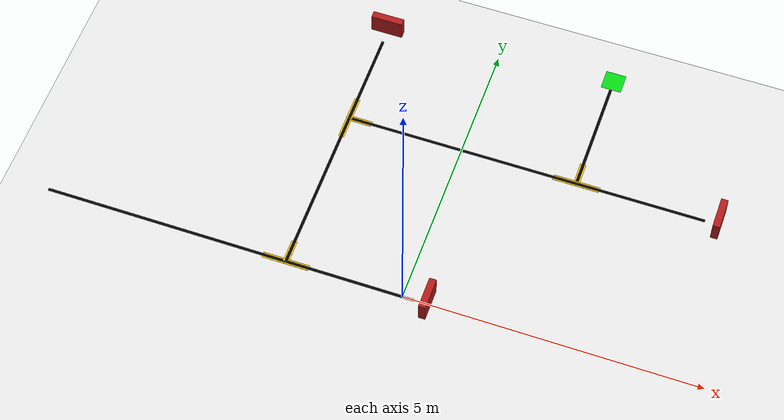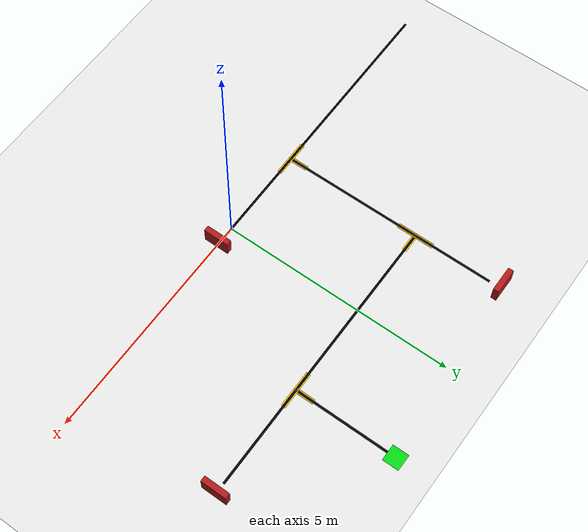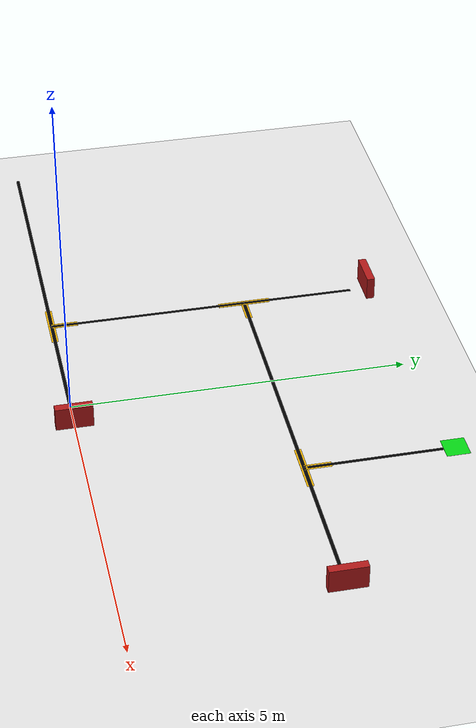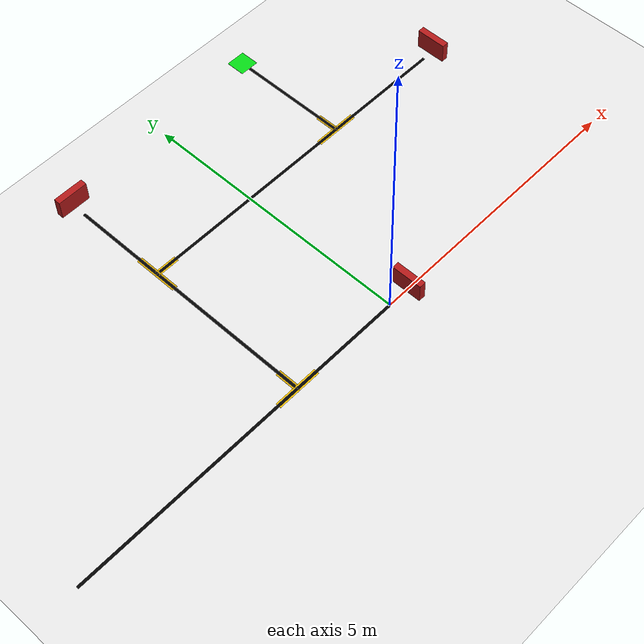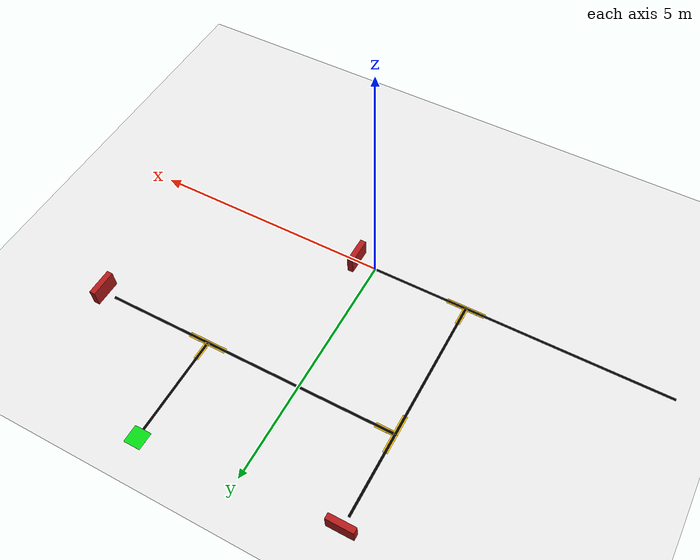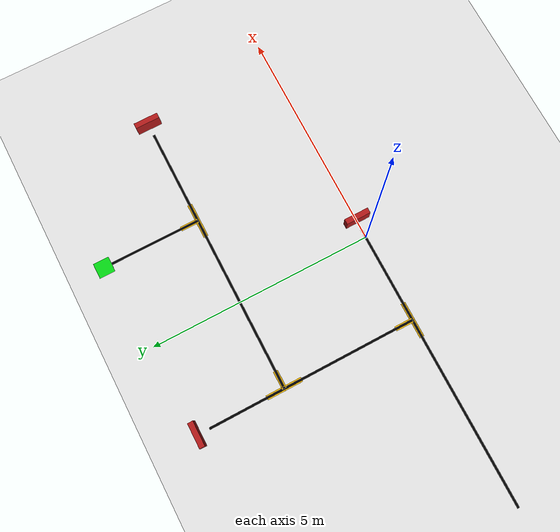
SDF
<?xml version="1.0"?>
<sdf version="1.6">
  <world name="simple_branch_maze">
    <physics name="1ms" type="ode">
      <max_step_size>0.001</max_step_size>
      <real_time_factor>1.0</real_time_factor>
    </physics>

    <plugin filename="libignition-gazebo-physics-system.so"
            name="ignition::gazebo::systems::Physics"/>
    <plugin filename="libignition-gazebo-user-commands-system.so"
            name="ignition::gazebo::systems::UserCommands"/>
    <plugin filename="libignition-gazebo-scene-broadcaster-system.so"
            name="ignition::gazebo::systems::SceneBroadcaster"/>
    <plugin filename="libignition-gazebo-sensors-system.so"
            name="ignition::gazebo::systems::Sensors">
      <render_engine>ogre2</render_engine>
    </plugin>

    <light type="directional" name="sun">
      <cast_shadows>true</cast_shadows>
      <pose>0 0 10 0 0 0</pose>
      <diffuse>1 1 1 1</diffuse>
      <specular>0.3 0.3 0.3 1</specular>
      <direction>-0.4 0.2 -0.9</direction>
    </light>

    <model name="white_floor">
      <static>true</static>
      <link name="floor">
        <collision name="floor_collision">
          <geometry><plane><normal>0 0 1</normal><size>14 12</size></plane></geometry>
        </collision>
        <visual name="floor_visual">
          <geometry><plane><normal>0 0 1</normal><size>14 12</size></plane></geometry>
          <material><ambient>0.9 0.9 0.9 1</ambient><diffuse>0.9 0.9 0.9 1</diffuse></material>
        </visual>
      </link>
    </model>

    <!-- Flat visual-only strips. The central black line is 5 cm wide. -->
    <model name="line_and_markers">
      <static>true</static>
      <link name="paint">
        <!-- START to J1, including the first junction. -->
        <visual name="start_to_j1">
          <pose>-4.1 0 0.001 0 0 0</pose>
          <geometry><box><size>4.2 0.05 0.001</size></box></geometry>
          <material><ambient>0.005 0.005 0.005 1</ambient><diffuse>0.005 0.005 0.005 1</diffuse></material>
        </visual>
        <!-- J1: straight leads to a wall; north leads to J2. -->
        <visual name="j1_straight_blocked">
          <pose>-0.9 0 0.001 0 0 0</pose>
          <geometry><box><size>2.2 0.05 0.001</size></box></geometry>
          <material><ambient>0.005 0.005 0.005 1</ambient><diffuse>0.005 0.005 0.005 1</diffuse></material>
        </visual>
        <visual name="j1_north_to_j2">
          <pose>-2 1.5 0.001 0 0 0</pose>
          <geometry><box><size>0.05 3.0 0.001</size></box></geometry>
          <material><ambient>0.005 0.005 0.005 1</ambient><diffuse>0.005 0.005 0.005 1</diffuse></material>
        </visual>
        <!-- J2: north leads to a wall; east leads to J3. -->
        <visual name="j2_north_blocked">
          <pose>-2 3.85 0.001 0 0 0</pose>
          <geometry><box><size>0.05 1.7 0.001</size></box></geometry>
          <material><ambient>0.005 0.005 0.005 1</ambient><diffuse>0.005 0.005 0.005 1</diffuse></material>
        </visual>
        <visual name="j2_east_to_j3">
          <pose>0 3 0.001 0 0 0</pose>
          <geometry><box><size>4.0 0.05 0.001</size></box></geometry>
          <material><ambient>0.005 0.005 0.005 1</ambient><diffuse>0.005 0.005 0.005 1</diffuse></material>
        </visual>
        <!-- J3: straight leads to a wall; north leads to the green goal. -->
        <visual name="j3_east_blocked">
          <pose>3.1 3 0.001 0 0 0</pose>
          <geometry><box><size>2.2 0.05 0.001</size></box></geometry>
          <material><ambient>0.005 0.005 0.005 1</ambient><diffuse>0.005 0.005 0.005 1</diffuse></material>
        </visual>
        <visual name="j3_north_to_goal">
          <pose>2 4.1 0.001 0 0 0</pose>
          <geometry><box><size>0.05 2.2 0.001</size></box></geometry>
          <material><ambient>0.005 0.005 0.005 1</ambient><diffuse>0.005 0.005 0.005 1</diffuse></material>
        </visual>

        <!-- Yellow shoulders on every approach to a junction. The central
             black line stays continuous, including on the return trip. -->
        <visual name="j1_warning_left">
          <pose>-2.2 0.0375 0.001 0 0 0</pose>
          <geometry><box><size>0.4 0.025 0.001</size></box></geometry>
          <material><ambient>1 0.75 0 1</ambient><diffuse>1 0.75 0 1</diffuse></material>
        </visual>
        <visual name="j1_warning_right">
          <pose>-2.2 -0.0375 0.001 0 0 0</pose>
          <geometry><box><size>0.4 0.025 0.001</size></box></geometry>
          <material><ambient>1 0.75 0 1</ambient><diffuse>1 0.75 0 1</diffuse></material>
        </visual>
        <visual name="j2_warning_west">
          <pose>-2.0375 2.8 0.001 0 0 0</pose>
          <geometry><box><size>0.025 0.4 0.001</size></box></geometry>
          <material><ambient>1 0.75 0 1</ambient><diffuse>1 0.75 0 1</diffuse></material>
        </visual>
        <visual name="j2_warning_east">
          <pose>-1.9625 2.8 0.001 0 0 0</pose>
          <geometry><box><size>0.025 0.4 0.001</size></box></geometry>
          <material><ambient>1 0.75 0 1</ambient><diffuse>1 0.75 0 1</diffuse></material>
        </visual>
        <visual name="j3_warning_north">
          <pose>1.8 3.0375 0.001 0 0 0</pose>
          <geometry><box><size>0.4 0.025 0.001</size></box></geometry>
          <material><ambient>1 0.75 0 1</ambient><diffuse>1 0.75 0 1</diffuse></material>
        </visual>
        <visual name="j3_warning_south">
          <pose>1.8 2.9625 0.001 0 0 0</pose>
          <geometry><box><size>0.4 0.025 0.001</size></box></geometry>
          <material><ambient>1 0.75 0 1</ambient><diffuse>1 0.75 0 1</diffuse></material>
        </visual>

        <!-- J1, approaching from the blocked east arm or the north arm. -->
        <visual name="j1_east_warning_north">
          <pose>-1.8 0.0375 0.001 0 0 0</pose>
          <geometry><box><size>0.4 0.025 0.001</size></box></geometry>
          <material><ambient>1 0.75 0 1</ambient><diffuse>1 0.75 0 1</diffuse></material>
        </visual>
        <visual name="j1_east_warning_south">
          <pose>-1.8 -0.0375 0.001 0 0 0</pose>
          <geometry><box><size>0.4 0.025 0.001</size></box></geometry>
          <material><ambient>1 0.75 0 1</ambient><diffuse>1 0.75 0 1</diffuse></material>
        </visual>
        <visual name="j1_north_warning_west">
          <pose>-2.0375 0.2 0.001 0 0 0</pose>
          <geometry><box><size>0.025 0.4 0.001</size></box></geometry>
          <material><ambient>1 0.75 0 1</ambient><diffuse>1 0.75 0 1</diffuse></material>
        </visual>
        <visual name="j1_north_warning_east">
          <pose>-1.9625 0.2 0.001 0 0 0</pose>
          <geometry><box><size>0.025 0.4 0.001</size></box></geometry>
          <material><ambient>1 0.75 0 1</ambient><diffuse>1 0.75 0 1</diffuse></material>
        </visual>

        <!-- J2, approaching from its blocked north arm or its east arm. -->
        <visual name="j2_north_warning_west">
          <pose>-2.0375 3.2 0.001 0 0 0</pose>
          <geometry><box><size>0.025 0.4 0.001</size></box></geometry>
          <material><ambient>1 0.75 0 1</ambient><diffuse>1 0.75 0 1</diffuse></material>
        </visual>
        <visual name="j2_north_warning_east">
          <pose>-1.9625 3.2 0.001 0 0 0</pose>
          <geometry><box><size>0.025 0.4 0.001</size></box></geometry>
          <material><ambient>1 0.75 0 1</ambient><diffuse>1 0.75 0 1</diffuse></material>
        </visual>
        <visual name="j2_east_warning_north">
          <pose>-1.8 3.0375 0.001 0 0 0</pose>
          <geometry><box><size>0.4 0.025 0.001</size></box></geometry>
          <material><ambient>1 0.75 0 1</ambient><diffuse>1 0.75 0 1</diffuse></material>
        </visual>
        <visual name="j2_east_warning_south">
          <pose>-1.8 2.9625 0.001 0 0 0</pose>
          <geometry><box><size>0.4 0.025 0.001</size></box></geometry>
          <material><ambient>1 0.75 0 1</ambient><diffuse>1 0.75 0 1</diffuse></material>
        </visual>

        <!-- J3, approaching from its blocked east arm or the goal arm. -->
        <visual name="j3_east_warning_north">
          <pose>2.2 3.0375 0.001 0 0 0</pose>
          <geometry><box><size>0.4 0.025 0.001</size></box></geometry>
          <material><ambient>1 0.75 0 1</ambient><diffuse>1 0.75 0 1</diffuse></material>
        </visual>
        <visual name="j3_east_warning_south">
          <pose>2.2 2.9625 0.001 0 0 0</pose>
          <geometry><box><size>0.4 0.025 0.001</size></box></geometry>
          <material><ambient>1 0.75 0 1</ambient><diffuse>1 0.75 0 1</diffuse></material>
        </visual>
        <visual name="j3_north_warning_west">
          <pose>1.9625 3.2 0.001 0 0 0</pose>
          <geometry><box><size>0.025 0.4 0.001</size></box></geometry>
          <material><ambient>1 0.75 0 1</ambient><diffuse>1 0.75 0 1</diffuse></material>
        </visual>
        <visual name="j3_north_warning_east">
          <pose>2.0375 3.2 0.001 0 0 0</pose>
          <geometry><box><size>0.025 0.4 0.001</size></box></geometry>
          <material><ambient>1 0.75 0 1</ambient><diffuse>1 0.75 0 1</diffuse></material>
        </visual>

        <visual name="goal_green">
          <pose>2 5.2 0.002 0 0 0</pose>
          <geometry><box><size>0.35 0.35 0.001</size></box></geometry>
          <material><ambient>0.02 0.85 0.08 1</ambient><diffuse>0.02 0.85 0.08 1</diffuse></material>
        </visual>
      </link>
    </model>

    <!-- Physical barriers are collision objects seen by the ultrasonic sensor. -->
    <model name="blocked_j1_straight">
      <static>true</static>
      <pose>0.42 0 0.18 0 0 0</pose>
      <link name="wall">
        <collision name="collision"><geometry><box><size>0.12 0.55 0.36</size></box></geometry></collision>
        <visual name="visual"><geometry><box><size>0.12 0.55 0.36</size></box></geometry>
          <material><ambient>0.7 0.1 0.1 1</ambient><diffuse>0.7 0.1 0.1 1</diffuse></material>
        </visual>
      </link>
    </model>
    <model name="blocked_j2_north">
      <static>true</static>
      <pose>-2 4.95 0.18 0 0 0</pose>
      <link name="wall">
        <collision name="collision"><geometry><box><size>0.55 0.12 0.36</size></box></geometry></collision>
        <visual name="visual"><geometry><box><size>0.55 0.12 0.36</size></box></geometry>
          <material><ambient>0.7 0.1 0.1 1</ambient><diffuse>0.7 0.1 0.1 1</diffuse></material>
        </visual>
      </link>
    </model>
    <model name="blocked_j3_east">
      <static>true</static>
      <pose>4.42 3 0.18 0 0 0</pose>
      <link name="wall">
        <collision name="collision"><geometry><box><size>0.12 0.55 0.36</size></box></geometry></collision>
        <visual name="visual"><geometry><box><size>0.12 0.55 0.36</size></box></geometry>
          <material><ambient>0.7 0.1 0.1 1</ambient><diffuse>0.7 0.1 0.1 1</diffuse></material>
        </visual>
      </link>
    </model>
  </world>
</sdf>
